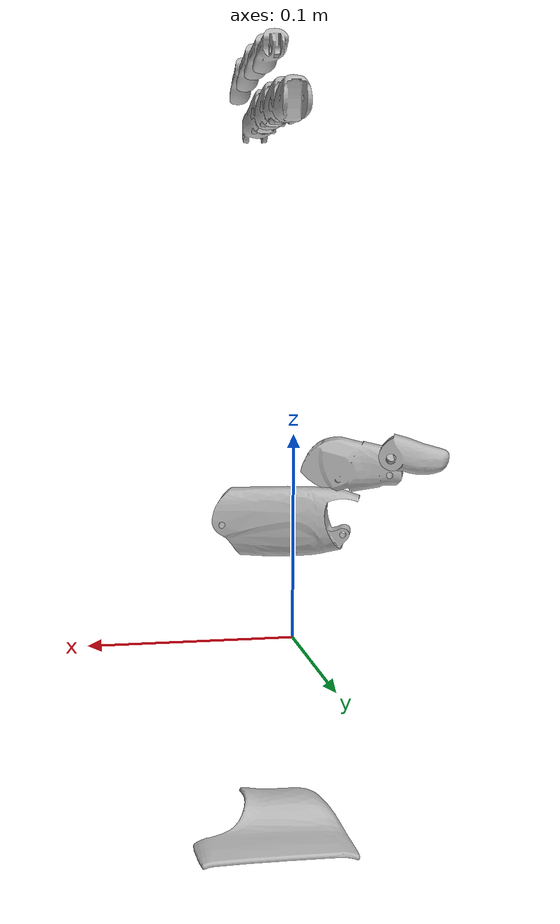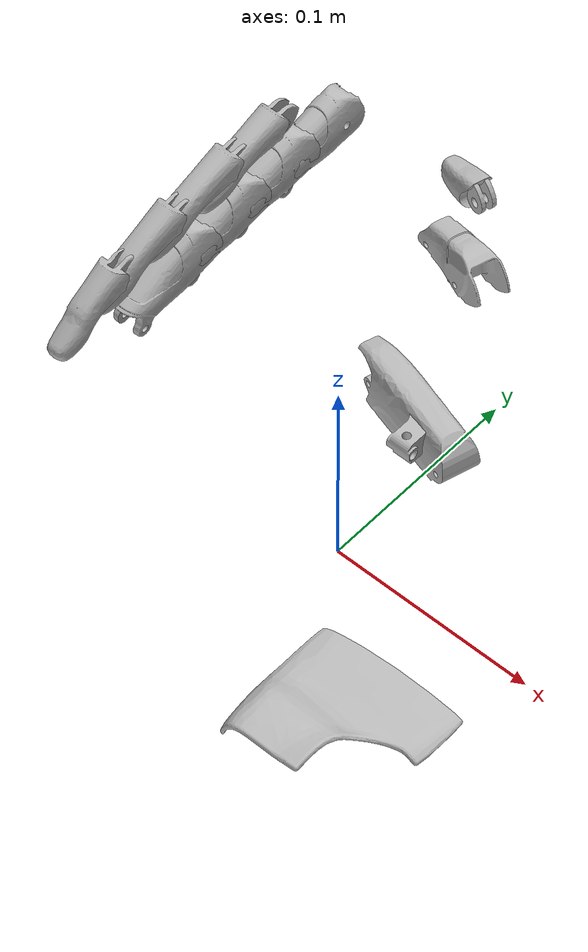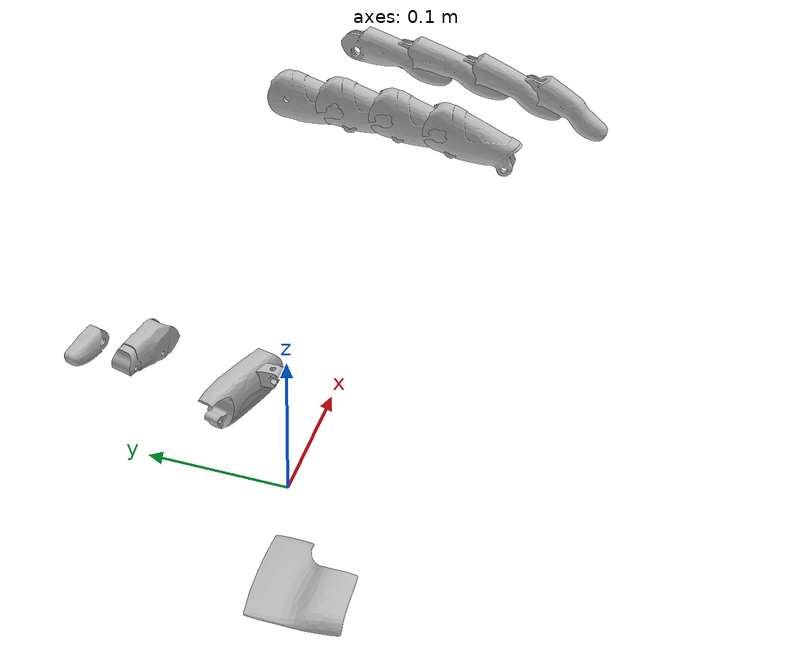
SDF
<sdf version='1.9'>
  <model name='inspire_hand_right'>
    <link name='base'>
      <inertial>
        <pose>0.002526394800594673 -0.001959388838160591 0.06604701239793076 0 0 0</pose>
        <mass>0.14143</mass>
        <inertia>
          <ixx>0.0001228100093982323</ixx>
          <ixy>1.7707912807802509e-06</ixy>
          <ixz>2.1710844039917139e-06</ixz>
          <iyy>7.666296965909826e-05</iyy>
          <iyz>-1.655060404248129e-06</iyz>
          <izz>8.3832020942669507e-05</izz>
        </inertia>
      </inertial>
      <collision name='base_fixed_joint_lump__hand_base_link_collision'>
        <pose>2.283265697344361e-13 8.604441060003354e-08 0.01359999999972781 0 0 3.14159</pose>
        <geometry>
          <cylinder>
            <length>0.027799999999999998</length>
            <radius>0.028000000000000001</radius>
          </cylinder>
        </geometry>
      </collision>
      <collision name='base_fixed_joint_lump__hand_base_link_collision_1'>
        <pose>0.003200000000626708 2.319267187397833e-07 0.03799999999923946 -1.57079 0 3.14159</pose>
        <geometry>
          <box>
            <size>0.0391 0.0202 0.0574</size>
          </box>
        </geometry>
      </collision>
      <collision name='base_fixed_joint_lump__hand_base_link_collision_2'>
        <pose>0.003200000001133726 4.229959246482284e-07 0.06819999999863505 -1.57079 0 3.14159</pose>
        <geometry>
          <box>
            <size>0.0391 0.04 0.0814</size>
          </box>
        </geometry>
      </collision>
      <collision name='base_fixed_joint_lump__hand_base_link_collision_3'>
        <pose>1.814860454994165e-12 6.839265283553608e-07 0.1080999999978365 -1.57079 0 3.14159</pose>
        <geometry>
          <box>
            <size>0.0322 0.04 0.0814</size>
          </box>
        </geometry>
      </collision>
      <collision name='base_fixed_joint_lump__hand_base_link_collision_4'>
        <pose>0.001599918006319443 -0.03089915645450027 0.1340001954952804 -1.57079 0 3.14159</pose>
        <geometry>
          <box>
            <size>0.0125 0.0111 0.0089</size>
          </box>
        </geometry>
      </collision>
      <collision name='base_fixed_joint_lump__hand_base_link_collision_5'>
        <pose>0.001599968689884495 -0.01179915645494978 0.1340000746534979 -1.57079 0 3.14159</pose>
        <geometry>
          <box>
            <size>0.0125 0.0111 0.0089</size>
          </box>
        </geometry>
      </collision>
      <collision name='base_fixed_joint_lump__hand_base_link_collision_6'>
        <pose>0.001600018577372609 0.007000843544607754 0.1339999557097538 -1.57079 0 3.14159</pose>
        <geometry>
          <box>
            <size>0.0125 0.0111 0.0089</size>
          </box>
        </geometry>
      </collision>
      <collision name='base_fixed_joint_lump__hand_base_link_collision_7'>
        <pose>0.00160006952629664 0.02620084354415589 0.1339998342352918 -1.57079 0 3.14159</pose>
        <geometry>
          <box>
            <size>0.0125 0.0111 0.0089</size>
          </box>
        </geometry>
      </collision>
      <visual name='base_fixed_joint_lump__hand_base_link_visual'>
        <pose>0 0 0 -1.57079 0 3.14159</pose>
        <geometry>
          <mesh>
            <scale>1 1 1</scale>
            <uri>meshes/visual/right_base_link.dae</uri>
          </mesh>
        </geometry>
      </visual>
    </link>
    <joint name='index_proximal_joint' type='revolute'>
      <pose relative_to='base'>-0.0002852443716713816 0.03226886455369662 0.1365297958442498 1.605695307179587 2.117582368135751e-22 3.14159</pose>
      <parent>base</parent>
      <child>index_proximal</child>
      <axis>
        <xyz>0 0 1</xyz>
        <limit>
          <lower>0</lower>
          <upper>1.47</upper>
          <effort>1</effort>
          <velocity>0.5</velocity>
        </limit>
        <dynamics>
          <spring_reference>0</spring_reference>
          <spring_stiffness>0</spring_stiffness>
        </dynamics>
      </axis>
    </joint>
    <link name='index_proximal'>
      <pose relative_to='index_proximal_joint'>0 0 0 0 0 0</pose>
      <inertial>
        <pose>0.0012259 0.011942 -0.0060001 0 0 0</pose>
        <mass>0.0042402999999999998</mass>
        <inertia>
          <ixx>6.6232000000000002e-07</ixx>
          <ixy>-1.5775000000000001e-08</ixy>
          <ixz>1.8514999999999999e-12</ixz>
          <iyy>2.1145999999999999e-07</iyy>
          <iyz>-5.0828000000000001e-12</iyz>
          <izz>6.9398000000000002e-07</izz>
        </inertia>
      </inertial>
      <collision name='index_proximal_collision'>
        <pose>0 0 0 0 0 0</pose>
        <geometry>
          <mesh>
            <scale>1 1 1</scale>
            <uri>meshes/collision/right_index_proximal.dae</uri>
          </mesh>
        </geometry>
      </collision>
      <visual name='index_proximal_visual'>
        <pose>0 0 0 0 0 0</pose>
        <geometry>
          <mesh>
            <scale>1 1 1</scale>
            <uri>meshes/visual/right_index_proximal.dae</uri>
          </mesh>
        </geometry>
      </visual>
    </link>
    <joint name='index_intermediate_joint' type='revolute'>
      <pose relative_to='index_proximal'>-0.0026138 0.032026 -0.001 0 0 0</pose>
      <parent>index_proximal</parent>
      <child>index_intermediate</child>
      <axis>
        <xyz>0 0 1</xyz>
        <limit>
          <lower>-0.045449999999999997</lower>
          <upper>1.5600000000000001</upper>
          <effort>1</effort>
          <velocity>0.5</velocity>
        </limit>
        <dynamics>
          <spring_reference>0</spring_reference>
          <spring_stiffness>0</spring_stiffness>
        </dynamics>
      </axis>
    </joint>
    <link name='index_intermediate'>
      <pose relative_to='index_intermediate_joint'>0 0 0 0 0 0</pose>
      <inertial>
        <pose>0.0019697 0.019589 -0.005 0 0 0</pose>
        <mass>0.0045683</mass>
        <inertia>
          <ixx>7.6110999999999996e-07</ixx>
          <ixy>8.7637000000000006e-08</ixy>
          <ixz>-3.7751000000000002e-13</ixz>
          <iyy>9.6076000000000006e-08</iyy>
          <iyz>9.9443999999999995e-13</iyz>
          <izz>7.8179000000000001e-07</izz>
        </inertia>
      </inertial>
      <collision name='index_intermediate_collision'>
        <pose>0 0 0 0 0 0</pose>
        <geometry>
          <mesh>
            <scale>1 1 1</scale>
            <uri>meshes/collision/right_index_intermediate.dae</uri>
          </mesh>
        </geometry>
      </collision>
      <visual name='index_intermediate_visual'>
        <pose>0 0 0 0 0 0</pose>
        <geometry>
          <mesh>
            <scale>1 1 1</scale>
            <uri>meshes/visual/right_index_intermediate.dae</uri>
          </mesh>
        </geometry>
      </visual>
    </link>
    <joint name='middle_proximal_joint' type='revolute'>
      <pose relative_to='base'>-0.000285295633709439 0.01295086816042437 0.1370999180652622 1.570795307179587 0 3.14159</pose>
      <parent>base</parent>
      <child>middle_proximal</child>
      <axis>
        <xyz>0 0 1</xyz>
        <limit>
          <lower>0</lower>
          <upper>1.47</upper>
          <effort>1</effort>
          <velocity>0.5</velocity>
        </limit>
        <dynamics>
          <spring_reference>0</spring_reference>
          <spring_stiffness>0</spring_stiffness>
        </dynamics>
      </axis>
    </joint>
    <link name='middle_proximal'>
      <pose relative_to='middle_proximal_joint'>0 0 0 0 0 0</pose>
      <inertial>
        <pose>0.001297 0.011934 -0.0060001 0 0 0</pose>
        <mass>0.0042402999999999998</mass>
        <inertia>
          <ixx>6.6211000000000004e-07</ixx>
          <ixy>-1.8460999999999999e-08</ixy>
          <ixz>1.8001999999999999e-12</ixz>
          <iyy>2.1166999999999999e-07</iyy>
          <iyz>-6.6808000000000004e-12</iyz>
          <izz>6.9396999999999996e-07</izz>
        </inertia>
      </inertial>
      <collision name='middle_proximal_collision'>
        <pose>0 0 0 0 0 0</pose>
        <geometry>
          <mesh>
            <scale>1 1 1</scale>
            <uri>meshes/collision/right_index_proximal.dae</uri>
          </mesh>
        </geometry>
      </collision>
      <visual name='middle_proximal_visual'>
        <pose>0 0 0 0 0 0</pose>
        <geometry>
          <mesh>
            <scale>1 1 1</scale>
            <uri>meshes/visual/right_index_proximal.dae</uri>
          </mesh>
        </geometry>
      </visual>
    </link>
    <joint name='middle_intermediate_joint' type='revolute'>
      <pose relative_to='middle_proximal'>-0.0024229 0.032041 -0.001 0 0 0</pose>
      <parent>middle_proximal</parent>
      <child>middle_intermediate</child>
      <axis>
        <xyz>0 0 1</xyz>
        <limit>
          <lower>-0.045449999999999997</lower>
          <upper>1.5600000000000001</upper>
          <effort>1</effort>
          <velocity>0.5</velocity>
        </limit>
        <dynamics>
          <spring_reference>0</spring_reference>
          <spring_stiffness>0</spring_stiffness>
        </dynamics>
      </axis>
    </joint>
    <link name='middle_intermediate'>
      <pose relative_to='middle_intermediate_joint'>0 0 0 0 0 0</pose>
      <inertial>
        <pose>0.001921 0.020796 -0.005 0 0 0</pose>
        <mass>0.0050396</mass>
        <inertia>
          <ixx>9.5821999999999991e-07</ixx>
          <ixy>1.1424999999999999e-07</ixy>
          <ixz>-2.4790999999999998e-12</ixz>
          <iyy>1.0646e-07</iyy>
          <iyz>5.9173000000000002e-12</iyz>
          <izz>9.8384000000000005e-07</izz>
        </inertia>
      </inertial>
      <collision name='middle_intermediate_collision'>
        <pose>0 0 0 0 0 0</pose>
        <geometry>
          <mesh>
            <scale>1 1 1</scale>
            <uri>meshes/collision/right_middle_intermediate.dae</uri>
          </mesh>
        </geometry>
      </collision>
      <visual name='middle_intermediate_visual'>
        <pose>0 0 0 0 0 0</pose>
        <geometry>
          <mesh>
            <scale>1 1 1</scale>
            <uri>meshes/visual/right_middle_intermediate.dae</uri>
          </mesh>
        </geometry>
      </visual>
    </link>
    <joint name='pinky_proximal_joint' type='revolute'>
      <pose relative_to='base'>-0.0002853976324172502 -0.02548714063291588 0.1357101612546322 1.46611 0 3.14159</pose>
      <parent>base</parent>
      <child>pinky_proximal</child>
      <axis>
        <xyz>0 0 1</xyz>
        <limit>
          <lower>0</lower>
          <upper>1.47</upper>
          <effort>1</effort>
          <velocity>0.5</velocity>
        </limit>
        <dynamics>
          <spring_reference>0</spring_reference>
          <spring_stiffness>0</spring_stiffness>
        </dynamics>
      </axis>
    </joint>
    <link name='pinky_proximal'>
      <pose relative_to='pinky_proximal_joint'>0 0 0 0 0 0</pose>
      <inertial>
        <pose>0.001297 0.011934 -0.0060001 0 0 0</pose>
        <mass>0.0042402999999999998</mass>
        <inertia>
          <ixx>6.6211000000000004e-07</ixx>
          <ixy>-1.8460999999999999e-08</ixy>
          <ixz>1.6907000000000001e-12</ixz>
          <iyy>2.1166999999999999e-07</iyy>
          <iyz>-6.9334000000000003e-12</iyz>
          <izz>6.9396999999999996e-07</izz>
        </inertia>
      </inertial>
      <collision name='pinky_proximal_collision'>
        <pose>0 0 0 0 0 0</pose>
        <geometry>
          <mesh>
            <scale>1 1 1</scale>
            <uri>meshes/collision/right_index_proximal.dae</uri>
          </mesh>
        </geometry>
      </collision>
      <visual name='pinky_proximal_visual'>
        <pose>0 0 0 0 0 0</pose>
        <geometry>
          <mesh>
            <scale>1 1 1</scale>
            <uri>meshes/visual/right_index_proximal.dae</uri>
          </mesh>
        </geometry>
      </visual>
    </link>
    <joint name='pinky_intermediate_joint' type='revolute'>
      <pose relative_to='pinky_proximal'>-0.0024229 0.032041 -0.001 0 0 0</pose>
      <parent>pinky_proximal</parent>
      <child>pinky_intermediate</child>
      <axis>
        <xyz>0 0 1</xyz>
        <limit>
          <lower>-0.045449999999999997</lower>
          <upper>1.5600000000000001</upper>
          <effort>1</effort>
          <velocity>0.5</velocity>
        </limit>
        <dynamics>
          <spring_reference>0</spring_reference>
          <spring_stiffness>0</spring_stiffness>
        </dynamics>
      </axis>
    </joint>
    <link name='pinky_intermediate'>
      <pose relative_to='pinky_intermediate_joint'>0 0 0 0 0 0</pose>
      <inertial>
        <pose>0.0024748 0.016203 -0.0050031 0 0 0</pose>
        <mass>0.0035996000000000001</mass>
        <inertia>
          <ixx>4.3912999999999999e-07</ixx>
          <ixy>4.1418000000000001e-08</ixy>
          <ixz>3.7168000000000002e-11</ixz>
          <iyy>7.0246999999999994e-08</iyy>
          <iyz>5.8613000000000005e-11</iyz>
          <izz>4.4867000000000001e-07</izz>
        </inertia>
      </inertial>
      <collision name='pinky_intermediate_collision'>
        <pose>0 0 0 0 0 0</pose>
        <geometry>
          <mesh>
            <scale>1 1 1</scale>
            <uri>meshes/collision/right_pinky_intermediate.dae</uri>
          </mesh>
        </geometry>
      </collision>
      <visual name='pinky_intermediate_visual'>
        <pose>0 0 0 0 0 0</pose>
        <geometry>
          <mesh>
            <scale>1 1 1</scale>
            <uri>meshes/visual/right_pinky_intermediate.dae</uri>
          </mesh>
        </geometry>
      </visual>
    </link>
    <joint name='ring_proximal_joint' type='revolute'>
      <pose relative_to='base'>-0.0002853466813502006 -0.006286333041213898 0.1369100397750848 1.51841 0 3.14159</pose>
      <parent>base</parent>
      <child>ring_proximal</child>
      <axis>
        <xyz>0 0 1</xyz>
        <limit>
          <lower>0</lower>
          <upper>1.47</upper>
          <effort>1</effort>
          <velocity>0.5</velocity>
        </limit>
        <dynamics>
          <spring_reference>0</spring_reference>
          <spring_stiffness>0</spring_stiffness>
        </dynamics>
      </axis>
    </joint>
    <link name='ring_proximal'>
      <pose relative_to='ring_proximal_joint'>0 0 0 0 0 0</pose>
      <inertial>
        <pose>0.001297 0.011934 -0.0060002 0 0 0</pose>
        <mass>0.0042402999999999998</mass>
        <inertia>
          <ixx>6.6211000000000004e-07</ixx>
          <ixy>-1.8460999999999999e-08</ixy>
          <ixz>1.5792999999999999e-12</ixz>
          <iyy>2.1166999999999999e-07</iyy>
          <iyz>-6.6868000000000001e-12</iyz>
          <izz>6.9396999999999996e-07</izz>
        </inertia>
      </inertial>
      <collision name='ring_proximal_collision'>
        <pose>0 0 0 0 0 0</pose>
        <geometry>
          <mesh>
            <scale>1 1 1</scale>
            <uri>meshes/collision/right_index_proximal.dae</uri>
          </mesh>
        </geometry>
      </collision>
      <visual name='ring_proximal_visual'>
        <pose>0 0 0 0 0 0</pose>
        <geometry>
          <mesh>
            <scale>1 1 1</scale>
            <uri>meshes/visual/right_index_proximal.dae</uri>
          </mesh>
        </geometry>
      </visual>
    </link>
    <joint name='ring_intermediate_joint' type='revolute'>
      <pose relative_to='ring_proximal'>-0.0024229 0.032041 -0.001 0 0 0</pose>
      <parent>ring_proximal</parent>
      <child>ring_intermediate</child>
      <axis>
        <xyz>0 0 1</xyz>
        <limit>
          <lower>-0.045449999999999997</lower>
          <upper>1.5600000000000001</upper>
          <effort>1</effort>
          <velocity>0.5</velocity>
        </limit>
        <dynamics>
          <spring_reference>0</spring_reference>
          <spring_stiffness>0</spring_stiffness>
        </dynamics>
      </axis>
    </joint>
    <link name='ring_intermediate'>
      <pose relative_to='ring_intermediate_joint'>0 0 0 0 0 0</pose>
      <inertial>
        <pose>0.0021753 0.019567 -0.005 0 0 0</pose>
        <mass>0.0045683</mass>
        <inertia>
          <ixx>7.6285999999999999e-07</ixx>
          <ixy>8.0634999999999994e-08</ixy>
          <ixz>-6.1561999999999996e-13</ixz>
          <iyy>9.4310000000000002e-08</iyy>
          <iyz>5.8619000000000005e-13</iyz>
          <izz>7.8176999999999999e-07</izz>
        </inertia>
      </inertial>
      <collision name='ring_intermediate_collision'>
        <pose>0 0 0 0 0 0</pose>
        <geometry>
          <mesh>
            <scale>1 1 1</scale>
            <uri>meshes/collision/right_index_intermediate.dae</uri>
          </mesh>
        </geometry>
      </collision>
      <visual name='ring_intermediate_visual'>
        <pose>0 0 0 0 0 0</pose>
        <geometry>
          <mesh>
            <scale>1 1 1</scale>
            <uri>meshes/visual/right_index_intermediate.dae</uri>
          </mesh>
        </geometry>
      </visual>
    </link>
    <joint name='thumb_proximal_yaw_joint' type='revolute'>
      <pose relative_to='base'>0.01696005426701167 0.02045039217616321 0.0690998706156614 3.673181863714987e-06 -6.326794896680421e-06 -1.570795307179586</pose>
      <parent>base</parent>
      <child>thumb_proximal_base</child>
      <axis>
        <xyz>0 0 -1</xyz>
        <limit>
          <lower>0</lower>
          <upper>1.3080000000000001</upper>
          <effort>1</effort>
          <velocity>0.5</velocity>
        </limit>
        <dynamics>
          <spring_reference>0</spring_reference>
          <spring_stiffness>0</spring_stiffness>
        </dynamics>
      </axis>
    </joint>
    <link name='thumb_proximal_base'>
      <pose relative_to='thumb_proximal_yaw_joint'>0 0 0 0 0 0</pose>
      <inertial>
        <pose>-0.0048064 0.0009382 -0.00757 0 0 0</pose>
        <mass>0.0018868999999999999</mass>
        <inertia>
          <ixx>5.8159999999999999e-08</ixx>
          <ixy>1.4539e-08</ixy>
          <ixz>4.4910000000000003e-09</ixz>
          <iyy>7.9161000000000003e-08</iyy>
          <iyz>-1.8727e-09</iyz>
          <izz>6.7433000000000006e-08</izz>
        </inertia>
      </inertial>
      <collision name='thumb_proximal_base_collision'>
        <pose>0 0 0 0 0 0</pose>
        <geometry>
          <mesh>
            <scale>1 1 1</scale>
            <uri>meshes/collision/right_thumb_proximal_base.dae</uri>
          </mesh>
        </geometry>
      </collision>
      <visual name='thumb_proximal_base_visual'>
        <pose>0 0 0 0 0 0</pose>
        <geometry>
          <mesh>
            <scale>1 1 1</scale>
            <uri>meshes/visual/right_thumb_proximal_base.dae</uri>
          </mesh>
        </geometry>
      </visual>
    </link>
    <joint name='thumb_proximal_pitch_joint' type='revolute'>
      <pose relative_to='thumb_proximal_base'>-0.008809900000000001 0.010892 -0.00925 1.5708 0 2.8587</pose>
      <parent>thumb_proximal_base</parent>
      <child>thumb_proximal</child>
      <axis>
        <xyz>0 0 1</xyz>
        <limit>
          <lower>0</lower>
          <upper>0.59999999999999998</upper>
          <effort>1</effort>
          <velocity>0.5</velocity>
        </limit>
        <dynamics>
          <spring_reference>0</spring_reference>
          <spring_stiffness>0</spring_stiffness>
        </dynamics>
      </axis>
    </joint>
    <link name='thumb_proximal'>
      <pose relative_to='thumb_proximal_pitch_joint'>0 0 0 0 0 0</pose>
      <inertial>
        <pose>0.021932 0.012785 -0.0080386 0 0 0</pose>
        <mass>0.0066074999999999997</mass>
        <inertia>
          <ixx>1.5685999999999999e-06</ixx>
          <ixy>-7.8296000000000002e-07</ixy>
          <ixz>8.9142999999999999e-10</ixz>
          <iyy>1.7352999999999999e-06</iyy>
          <iyz>-1.0190999999999999e-09</iyz>
          <izz>2.7860000000000001e-06</izz>
        </inertia>
      </inertial>
      <collision name='thumb_proximal_collision'>
        <pose>0 0 0 0 0 0</pose>
        <geometry>
          <mesh>
            <scale>1 1 1</scale>
            <uri>meshes/collision/right_thumb_proximal.dae</uri>
          </mesh>
        </geometry>
      </collision>
      <visual name='thumb_proximal_visual'>
        <pose>0 0 0 0 0 0</pose>
        <geometry>
          <mesh>
            <scale>1 1 1</scale>
            <uri>meshes/visual/right_thumb_proximal.dae</uri>
          </mesh>
        </geometry>
      </visual>
    </link>
    <joint name='thumb_intermediate_joint' type='revolute'>
      <pose relative_to='thumb_proximal'>0.04407 0.034553 -0.0008 0 0 0</pose>
      <parent>thumb_proximal</parent>
      <child>thumb_intermediate</child>
      <axis>
        <xyz>0 0 1</xyz>
        <limit>
          <lower>0</lower>
          <upper>0.80000000000000004</upper>
          <effort>1</effort>
          <velocity>0.5</velocity>
        </limit>
        <dynamics>
          <spring_reference>0</spring_reference>
          <spring_stiffness>0</spring_stiffness>
        </dynamics>
      </axis>
    </joint>
    <link name='thumb_intermediate'>
      <pose relative_to='thumb_intermediate_joint'>0 0 0 0 0 0</pose>
      <inertial>
        <pose>0.009554399999999999 -0.0016282 -0.0071997 0 0 0</pose>
        <mass>0.0037847000000000002</mass>
        <inertia>
          <ixx>3.6981e-07</ixx>
          <ixy>-9.8581000000000001e-08</ixy>
          <ixz>-4.7469000000000003e-12</ixz>
          <iyy>3.2393999999999997e-07</iyy>
          <iyz>1.0939e-12</iyz>
          <izz>4.6530999999999998e-07</izz>
        </inertia>
      </inertial>
      <collision name='thumb_intermediate_collision'>
        <pose>0 0 0 0 0 0</pose>
        <geometry>
          <mesh>
            <scale>1 1 1</scale>
            <uri>meshes/collision/right_thumb_intermediate.dae</uri>
          </mesh>
        </geometry>
      </collision>
      <visual name='thumb_intermediate_visual'>
        <pose>0 0 0 0 0 0</pose>
        <geometry>
          <mesh>
            <scale>1 1 1</scale>
            <uri>meshes/visual/right_thumb_intermediate.dae</uri>
          </mesh>
        </geometry>
      </visual>
    </link>
    <joint name='thumb_distal_joint' type='revolute'>
      <pose relative_to='thumb_intermediate'>0.020248 0.010156 -0.0012 0 0 0</pose>
      <parent>thumb_intermediate</parent>
      <child>thumb_distal</child>
      <axis>
        <xyz>0 0 1</xyz>
        <limit>
          <lower>0</lower>
          <upper>0.40000000000000002</upper>
          <effort>1</effort>
          <velocity>0.5</velocity>
        </limit>
        <dynamics>
          <spring_reference>0</spring_reference>
          <spring_stiffness>0</spring_stiffness>
        </dynamics>
      </axis>
    </joint>
    <link name='thumb_distal'>
      <pose relative_to='thumb_distal_joint'>0 0 0 0 0 0</pose>
      <inertial>
        <pose>0.0092888 0.0049529 -0.0060033 0 0 0</pose>
        <mass>0.0033441</mass>
        <inertia>
          <ixx>1.3631999999999999e-07</ixx>
          <ixy>-5.6787999999999999e-08</ixy>
          <ixz>-9.2763999999999994e-11</ixz>
          <iyy>1.4051999999999999e-07</iyy>
          <iyz>-1.2283e-10</iyz>
          <izz>2.0025999999999999e-07</izz>
        </inertia>
      </inertial>
      <collision name='thumb_distal_collision'>
        <pose>0 0 0 0 0 0</pose>
        <geometry>
          <mesh>
            <scale>1 1 1</scale>
            <uri>meshes/collision/right_thumb_distal.dae</uri>
          </mesh>
        </geometry>
      </collision>
      <visual name='thumb_distal_visual'>
        <pose>0 0 0 0 0 0</pose>
        <geometry>
          <mesh>
            <scale>1 1 1</scale>
            <uri>meshes/visual/right_thumb_distal.dae</uri>
          </mesh>
        </geometry>
      </visual>
    </link>
    <frame name='base_joint' attached_to='base'>
      <pose>0 0 0 -1.57079 -0 3.14159</pose>
    </frame>
    <frame name='hand_base_link' attached_to='base_joint'/>
    <frame name='index_tip_joint' attached_to='index_intermediate'>
      <pose>-0.0008 0.045 -0.005 0 -0 0</pose>
    </frame>
    <frame name='index_tip' attached_to='index_tip_joint'/>
    <frame name='middle_tip_joint' attached_to='middle_intermediate'>
      <pose>-0.001 0.048 -0.005 0 -0 0</pose>
    </frame>
    <frame name='middle_tip' attached_to='middle_tip_joint'/>
    <frame name='pinky_tip_joint' attached_to='pinky_intermediate'>
      <pose>-0.0008 0.037 -0.005 0 -0 0</pose>
    </frame>
    <frame name='pinky_tip' attached_to='pinky_tip_joint'/>
    <frame name='ring_tip_joint' attached_to='ring_intermediate'>
      <pose>-0.0008 0.045 -0.005 0 -0 0</pose>
    </frame>
    <frame name='ring_tip' attached_to='ring_tip_joint'/>
    <frame name='thumb_tip_joint' attached_to='thumb_distal'>
      <pose>0.0202 0.014 -0.006 0 -0 0</pose>
    </frame>
    <frame name='thumb_tip' attached_to='thumb_tip_joint'/>
  </model>
</sdf>
